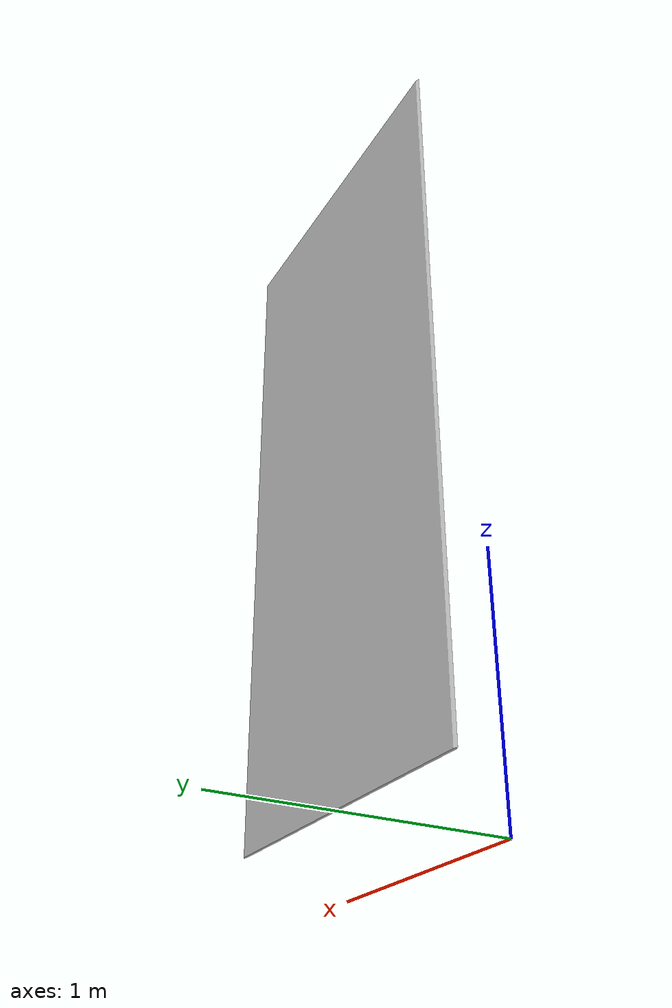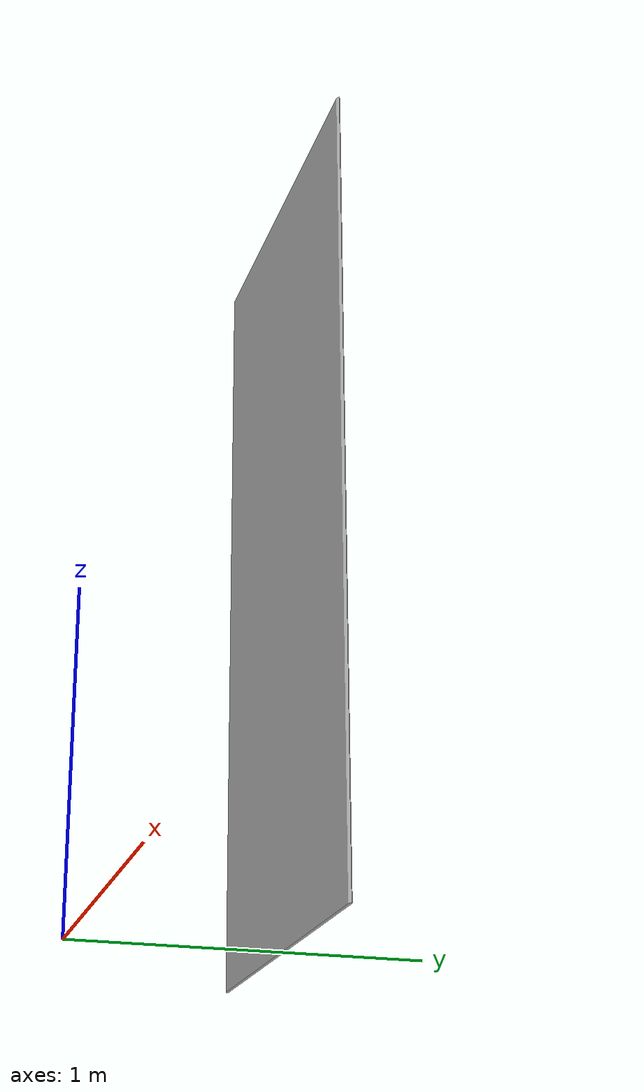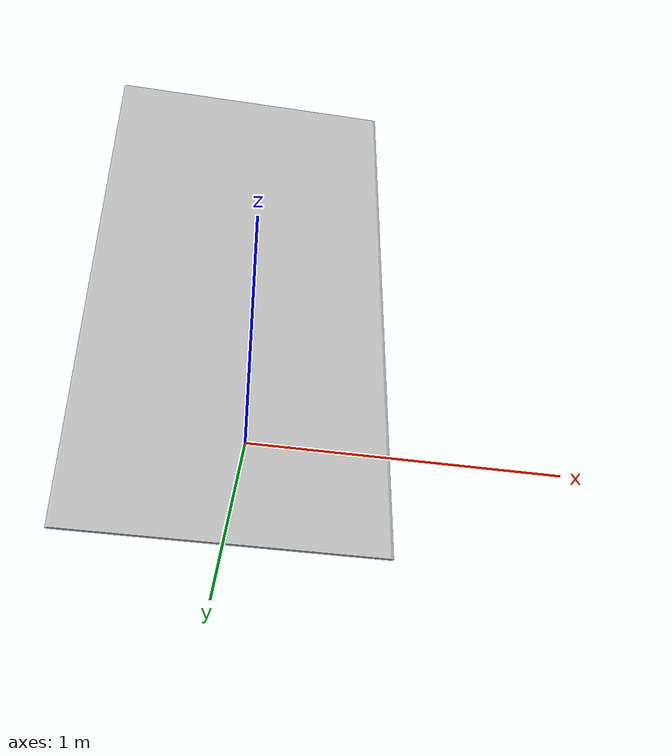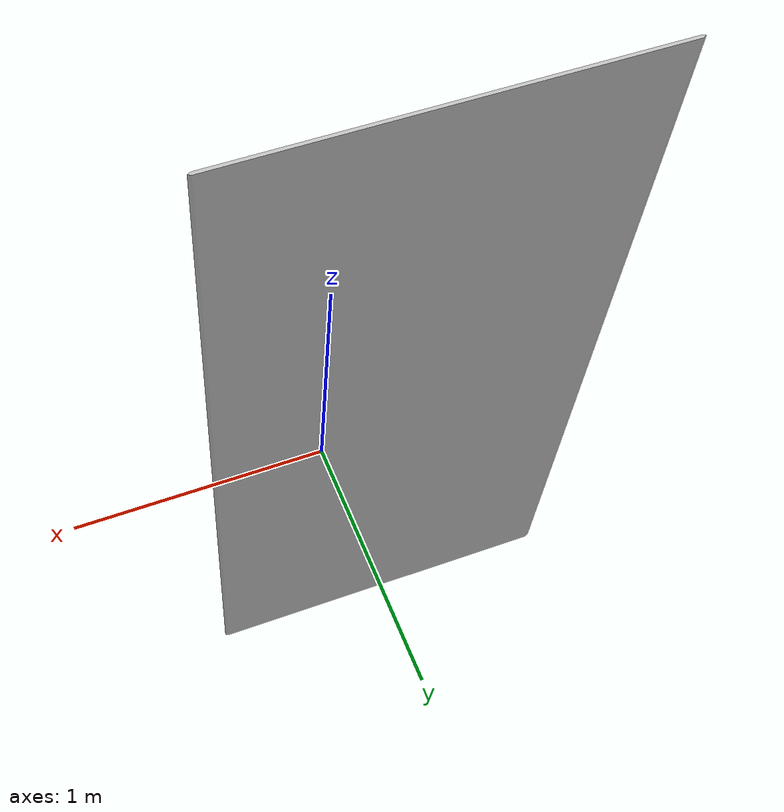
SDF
<?xml version="1.0" ?>
<sdf version="1.5">
  <model name="nist_maze_wall_240">
    <static>true</static>
    <link name="nist__maze_wall_240_link">
      <pose>0 0 0.0 0 0 0</pose>
      <collision name="collision">
        <geometry>
          <mesh>
            <uri>model://nist_maze_wall_240/meshes/nist_maze_wall_240.dae</uri>
            <scale>1 1 1</scale>
          </mesh>
        </geometry>
      </collision>
      <visual name="visual">
        <geometry>
          <mesh>
            <uri>model://nist_maze_wall_240/meshes/nist_maze_wall_240.dae</uri>
            <scale>1 1 1</scale>
          </mesh>
        </geometry>
      </visual>
    </link>
  </model>
</sdf>
